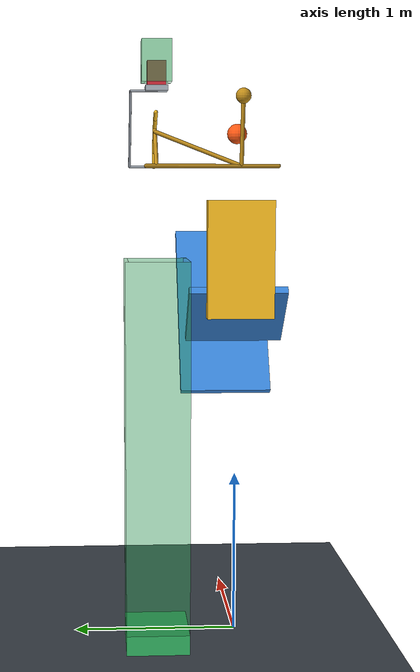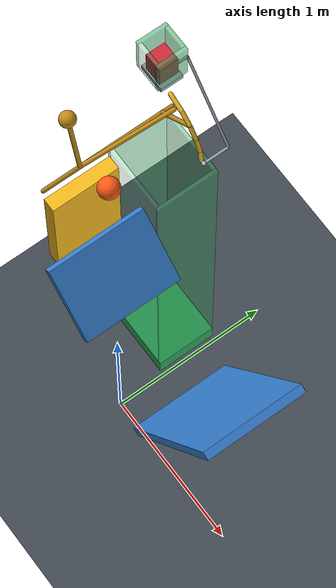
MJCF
<mujoco model="ricochet_stop_release">
  <compiler angle="degree" autolimits="true"/>
  <option timestep="0.002" gravity="0 0 -9.81" integrator="implicitfast" solver="Newton" iterations="100" tolerance="1e-10"/>
  <size njmax="2000" nconmax="400"/>

  <worldbody>
    <light name="overhead" pos="0 -2 6" dir="0 0 -1"/>
    <camera name="overview" pos="4 -7 4" xyaxes="0.868 0.496 0 -0.155 0.271 0.950"/>
    <geom name="floor" type="plane" size="8 8 0.1" rgba="0.25 0.28 0.31 1" condim="6" friction="0.8 0.02 0.02" solref="0.015 1" solimp="0.95 0.99 0.001"/>

    <!-- The ball's bottom is initially 1 m above wall1 directly below it. -->
    <body name="ball" pos="0 0 3.095355339">
      <freejoint name="ball_free"/>
      <geom name="ball_sphere" type="sphere" size="0.06" mass="0.4" rgba="1 0.35 0.08 1" condim="6" friction="0.5 0.01 0.01" solref="0.01 1" solimp="0.95 0.99 0.001"/>
    </body>

    <body name="wall1" pos="0 0 2">
      <geom name="wall1_face" type="box" size="0.23 0.30 0.025" euler="0 45 0" rgba="0.22 0.52 0.85 1" priority="2" condim="1" friction="0 0 0" solref="-30000 -1" solimp="0.99 0.99 0.001"/>
    </body>

    <body name="wall2" pos="0.90 0 1.94">
      <geom name="wall2_face" type="box" size="0.60 0.30 0.025" euler="0 -60 0" rgba="0.22 0.52 0.85 1" priority="2" condim="1" friction="0 0 0" solref="-30000 -1" solimp="0.99 0.99 0.001"/>
    </body>

    <!-- The ball hits below the hinge; the elevated weight completes the rotation. -->
    <body name="target" pos="-0.25 0 2.90">
      <joint name="target_hinge" type="hinge" axis="0 1 0" range="0 85" damping="0.025" armature="0.001" solreflimit="0.004 1" solimplimit="0.99 0.99 0.001"/>
      <geom name="target_paddle" type="box" pos="0 0 -0.55" size="0.04 0.20 0.35" mass="0.08" rgba="0.95 0.72 0.12 1" condim="3" friction="0.15 0.005 0.001" solref="0.008 1"/>
      <geom name="target_counterweight" type="sphere" pos="-0.08 0 0.40" size="0.045" mass="0.30" rgba="0.75 0.55 0.10 1"/>
      <geom name="target_counterweight_stem" type="capsule" fromto="0 0 0 -0.08 0 0.40" size="0.012" mass="0.01" rgba="0.75 0.55 0.10 1"/>
      <geom name="target_axle" type="capsule" fromto="0 -0.22 0 0 0.56 0" size="0.012" mass="0.02" rgba="0.65 0.48 0.10 1"/>
      <geom name="target_latch_brace" type="capsule" fromto="0 0 0 0.10 0.50 0.20" size="0.012" mass="0.015" rgba="0.75 0.55 0.10 1"/>
      <geom name="target_latch_spoke" type="capsule" fromto="0 0.50 0 0.226274 0.50 0.226274" size="0.012" mass="0.015" rgba="0.75 0.55 0.10 1"/>

      <!-- This arc retains the shelf's catch until approximately 82 degrees. -->
      <geom name="target_latch_1" type="capsule" fromto="0.066532 0.50 0.313007 0.160000 0.50 0.277128" size="0.012" mass="0.008" rgba="0.95 0.72 0.12 1" condim="1" friction="0 0 0" solref="0.004 1" solimp="0.99 0.99 0.001"/>
      <geom name="target_latch_2" type="capsule" fromto="0.160000 0.50 0.277128 0.226274 0.50 0.226274" size="0.012" mass="0.008" rgba="0.95 0.72 0.12 1" condim="1" friction="0 0 0" solref="0.004 1" solimp="0.99 0.99 0.001"/>
      <geom name="target_latch_3" type="capsule" fromto="0.226274 0.50 0.226274 0.277128 0.50 0.160000" size="0.012" mass="0.008" rgba="0.95 0.72 0.12 1" condim="1" friction="0 0 0" solref="0.004 1" solimp="0.99 0.99 0.001"/>
      <geom name="target_latch_4" type="capsule" fromto="0.277128 0.50 0.160000 0.309096 0.50 0.082822" size="0.012" mass="0.008" rgba="0.95 0.72 0.12 1" condim="1" friction="0 0 0" solref="0.004 1" solimp="0.99 0.99 0.001"/>
      <geom name="target_latch_5" type="capsule" fromto="0.309096 0.50 0.082822 0.320000 0.50 0" size="0.012" mass="0.008" rgba="0.95 0.72 0.12 1" condim="1" friction="0 0 0" solref="0.004 1" solimp="0.99 0.99 0.001"/>
    </body>

    <!-- Spring-driven retraction needs roughly 0.15 m before releasing the block. -->
    <body name="release_shelf" pos="-0.25 0.50 2.90">
      <joint name="shelf_slide" type="slide" axis="-1 0 0" range="0 0.22" stiffness="4" springref="0.22" damping="0.15" solreflimit="0.006 1"/>
      <geom name="release_shelf_plate" type="box" pos="0 0 0.445" size="0.08 0.065 0.015" mass="0.035" rgba="0.65 0.68 0.72 1" condim="3" friction="0.02 0.001 0.0001" solref="0.006 1"/>
      <geom name="release_shelf_catch" type="sphere" pos="0.344 0 0" size="0.012" mass="0.008" rgba="0.75 0.78 0.82 1" priority="1" condim="1" friction="0 0 0" solref="0.004 1" solimp="0.99 0.99 0.001"/>
      <geom name="release_shelf_catch_link" type="capsule" fromto="0.344 0 0 0.344 0.15 0" size="0.007" mass="0.005" rgba="0.65 0.68 0.72 1"/>
      <geom name="release_shelf_outer_brace" type="capsule" fromto="0.344 0.15 0 0 0.15 0.43" size="0.007" mass="0.005" rgba="0.65 0.68 0.72 1"/>
      <geom name="release_shelf_plate_link" type="capsule" fromto="0 0.15 0.43 0 0 0.43" size="0.007" mass="0.005" rgba="0.65 0.68 0.72 1"/>
    </body>

    <body name="block" pos="-0.25 0.50 3.430">
      <freejoint name="block_free"/>
      <geom name="block_payload" type="box" size="0.055 0.055 0.070" mass="0.08" rgba="0.80 0.16 0.22 1" condim="3" friction="0.02 0.001 0.0001" solref="0.008 1" solimp="0.95 0.99 0.001"/>
    </body>

    <!-- The lower bin stays clear of the rotating latch and catches the payload. -->
    <body name="bin" pos="-0.25 0.50 0">
      <geom name="bin_bottom" type="box" pos="0 0 0.06" size="0.22 0.19 0.06" rgba="0.18 0.65 0.35 1" condim="3" friction="0.8 0.01 0.001" solref="0.012 1"/>
      <geom name="bin_left" type="box" pos="-0.21 0 1.235" size="0.01 0.19 1.115" rgba="0.18 0.65 0.35 0.45" condim="3" friction="0.03 0.001 0.0001" solref="0.008 1"/>
      <geom name="bin_right" type="box" pos="0.21 0 1.235" size="0.01 0.19 1.115" rgba="0.18 0.65 0.35 0.45" condim="3" friction="0.03 0.001 0.0001" solref="0.008 1"/>
      <geom name="bin_front" type="box" pos="0 -0.18 1.235" size="0.20 0.01 1.115" rgba="0.18 0.65 0.35 0.25" condim="3" friction="0.03 0.001 0.0001" solref="0.008 1"/>
      <geom name="bin_back" type="box" pos="0 0.18 1.235" size="0.20 0.01 1.115" rgba="0.18 0.65 0.35 0.45" condim="3" friction="0.03 0.001 0.0001" solref="0.008 1"/>
      <geom name="bin_upper_left_guide" type="box" pos="-0.0775 0 3.50" size="0.01 0.0875 0.12" rgba="0.18 0.65 0.35 0.55" condim="3" friction="0.02 0.001 0.0001" solref="0.006 1"/>
      <geom name="bin_upper_right_guide" type="box" pos="0.0775 0 3.50" size="0.01 0.0875 0.12" rgba="0.18 0.65 0.35 0.55" condim="3" friction="0.02 0.001 0.0001" solref="0.006 1"/>
      <geom name="bin_upper_front_guide" type="box" pos="0 -0.0775 3.50" size="0.0675 0.01 0.12" rgba="0.18 0.65 0.35 0.30" condim="3" friction="0.02 0.001 0.0001" solref="0.006 1"/>
      <geom name="bin_upper_back_guide" type="box" pos="0 0.0775 3.50" size="0.0675 0.01 0.12" rgba="0.18 0.65 0.35 0.55" condim="3" friction="0.02 0.001 0.0001" solref="0.006 1"/>
    </body>
  </worldbody>

  <keyframe>
    <key name="start" qpos="0 0 3.095355339 1 0 0 0 0 0 -0.25 0.50 3.430 1 0 0 0" qvel="0 0 0 0 0 0 0 0 0 0 0 0 0 0"/>
  </keyframe>
</mujoco>
